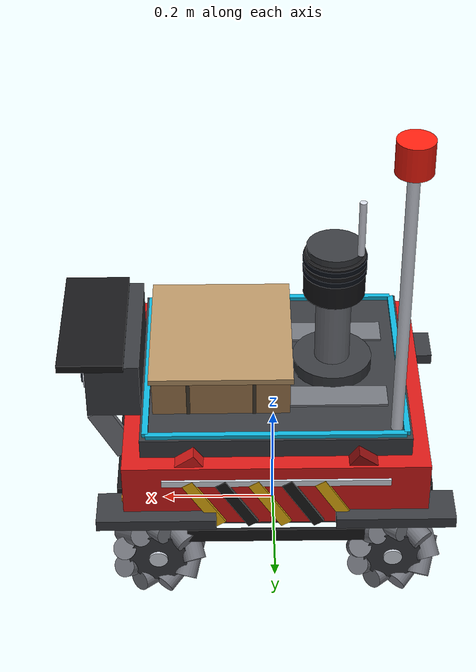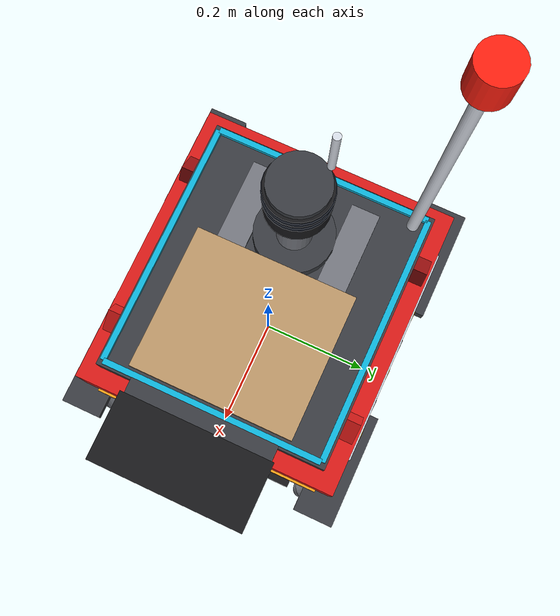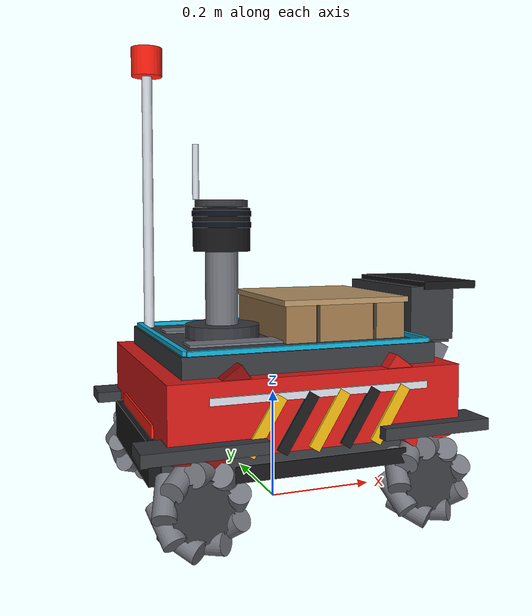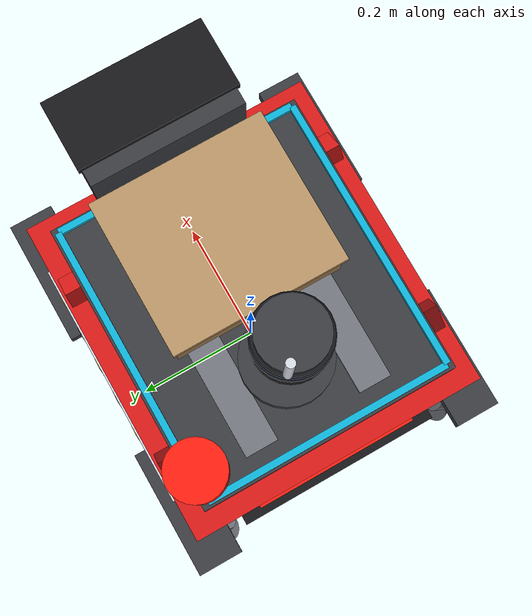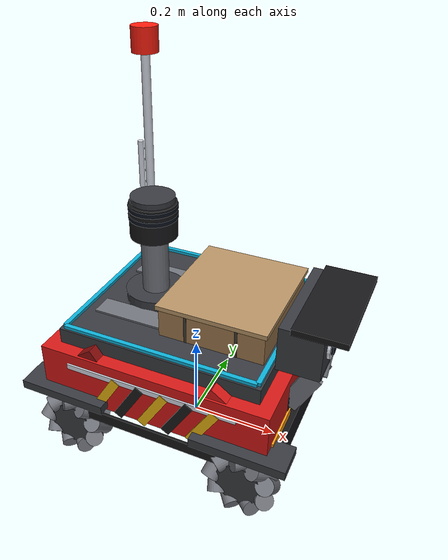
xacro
<?xml version="1.0" ?>
<robot name="depot_bot" xmlns:xacro="http://www.ros.org/wiki/xacro">

  <!-- 辊子布局是**算出来的**（9 辊、Rc+r=轮半径、轴线 45°、左右镜像），
       由 scripts/gen_rollers.py 生成；make robot 会先跑它。别手改 rollers.xacro。 -->
  <xacro:include filename="rollers.xacro"/>

  <xacro:arg name="wheel_friction" default="anisotropic"/>
  <xacro:arg name="enable_rgbd" default="true"/>
  <xacro:arg name="visual_detail" default="high"/>
  <xacro:property name="wheel_friction" value="$(arg wheel_friction)"/>
  <xacro:property name="visual_detail" value="$(arg visual_detail)"/>
  <xacro:arg name="sensors" default="nav"/>
  <xacro:property name="sensors" value="$(arg sensors)"/>
  <xacro:property name="is_nav" value="${sensors == 'nav'}"/>
  <xacro:property name="lidar_samples" value="${360 if is_nav else 1024}"/>
  <xacro:property name="lidar_beams" value="${16 if is_nav else 32}"/>
  <xacro:property name="lidar_rate" value="${5 if is_nav else 10}"/>
  <xacro:arg name="cam_always_on" default="false"/>
  <xacro:property name="cam_always_on" value="$(arg cam_always_on)"/>
  <!-- 相机分辨率/帧率做成参数：开渲染是 GPU 风险点，第一次开永远用 320x240@5Hz。
       always_on=false + 有人订阅才渲染 —— 所以"桥不建 = 零开销"，这比改档位更可靠。 -->
  <xacro:arg name="cam_width"  default="320"/>
  <xacro:arg name="cam_height" default="240"/>
  <xacro:arg name="cam_rate"   default="5"/>
  <xacro:property name="cam_width"  value="$(arg cam_width)"/>
  <xacro:property name="cam_height" value="$(arg cam_height)"/>
  <xacro:property name="cam_rate"   value="$(arg cam_rate)"/>

  <!-- ============================================================ 常量 -->
  <xacro:property name="wheel_radius" value="0.076"/>
  <xacro:property name="wheel_width"  value="0.050"/>
  <xacro:property name="track"        value="0.42"/>
  <xacro:property name="wheelbase"    value="0.40"/>
  <xacro:property name="body_x"       value="0.52"/>
  <xacro:property name="body_y"       value="0.46"/>
  <xacro:property name="body_z"       value="0.30"/>
  <xacro:property name="body_z0"      value="0.09"/>
  <xacro:property name="cam_z"        value="0.35"/>
  <xacro:arg name="cam_pitch" default="0"/>
  <xacro:property name="cam_pitch_val" value="$(arg cam_pitch)"/>
  <xacro:property name="cam_pitch_rad" value="${-float(cam_pitch_val)*3.14159265358979/180.0}"/>
  <xacro:property name="lidar_z"      value="0.55"/>
  <xacro:property name="mass_body"    value="10.0"/>
  <xacro:property name="mass_wheel"   value="0.5"/>
  <!-- base_link 原点在轮轴高度：所有"离地高度"都要减 zr -->
  <xacro:property name="zr" value="${wheel_radius}"/>

  <!-- ============================================================ 材质 -->
  <material name="amr_red">     <color rgba="0.84 0.10 0.09 1"/></material>
  <material name="amr_red_dk">  <color rgba="0.56 0.05 0.05 1"/></material>
  <material name="amr_grey">    <color rgba="0.22 0.23 0.25 1"/></material>
  <material name="amr_grey_lt"> <color rgba="0.45 0.46 0.49 1"/></material>
  <material name="amr_black">   <color rgba="0.09 0.09 0.10 1"/></material>
  <material name="amr_steel">   <color rgba="0.66 0.68 0.72 1"/></material>
  <material name="amr_chrome">  <color rgba="0.84 0.86 0.90 1"/></material>
  <material name="lamp_amber">  <color rgba="1.00 0.62 0.08 1"/></material>
  <material name="lamp_red">    <color rgba="1.00 0.12 0.06 1"/></material>
  <material name="lens_glass">  <color rgba="0.05 0.07 0.11 1"/></material>
  <material name="hazard_yellow"> <color rgba="0.93 0.72 0.06 1"/></material>
  <material name="hazard_dark">   <color rgba="0.10 0.10 0.10 1"/></material>
  <material name="led_cyan">      <color rgba="0.05 0.70 0.85 1"/></material>
  <material name="crate_card">    <color rgba="0.62 0.47 0.30 1"/></material>
  <material name="crate_light">   <color rgba="0.72 0.58 0.40 1"/></material>
  <material name="crate_strap">   <color rgba="0.25 0.22 0.18 1"/></material>

  <xacro:macro name="box_inertia" params="m x y z">
    <inertial>
      <mass value="${m}"/>
      <inertia ixx="${m*(y*y+z*z)/12}" ixy="0" ixz="0"
               iyy="${m*(x*x+z*z)/12}" iyz="0"
               izz="${m*(x*x+y*y)/12}"/>
    </inertial>
  </xacro:macro>

  <xacro:macro name="cyl_inertia" params="m r l">
    <inertial>
      <mass value="${m}"/>
      <inertia ixx="${m*(3*r*r+l*l)/12}" ixy="0" ixz="0"
               iyy="${m*(3*r*r+l*l)/12}" iyz="0"
               izz="${m*r*r/2}"/>
    </inertial>
  </xacro:macro>

  <xacro:macro name="box_vis" params="name xyz size mat rpy:='0 0 0'">
    <visual name="${name}">
      <origin xyz="${xyz}" rpy="${rpy}"/>
      <geometry><box size="${size}"/></geometry>
      <material name="${mat}"/>
    </visual>
  </xacro:macro>

  <xacro:macro name="cyl_vis" params="name xyz r l mat rpy:='0 0 0'">
    <visual name="${name}">
      <origin xyz="${xyz}" rpy="${rpy}"/>
      <geometry><cylinder radius="${r}" length="${l}"/></geometry>
      <material name="${mat}"/>
    </visual>
  </xacro:macro>

  <!-- ============================================================ 车体 -->
  <link name="base_footprint"/>

  <joint name="base_joint" type="fixed">
    <parent link="base_footprint"/>
    <child link="base_link"/>
    <origin xyz="0 0 ${wheel_radius}" rpy="0 0 0"/>
  </joint>

  <link name="base_link">
    <xacro:box_inertia m="${mass_body}" x="${body_x}" y="${body_y}" z="${body_z}"/>

    <!-- 唯一碰撞体：整车包围盒（细节只影响外观，不影响规划/物理） -->
    <collision name="chassis_collision">
      <origin xyz="0 0 ${body_z0 + body_z/2 - zr}" rpy="0 0 0"/>
      <geometry><box size="${body_x} ${body_y} ${body_z}"/></geometry>
    </collision>

    <!-- 底盘裙边（深灰，离地 0.09~0.15） -->
    <!-- 裙边收窄到 y±0.170：轮子视觉占 y 0.185~0.235，必须留出间隙（原来 0.22 直接插进轮子里） -->
    <xacro:box_vis name="skirt" xyz="0 0 ${0.120 - zr}" size="0.500 0.330 0.060" mat="amr_grey"/>

    <!-- 主车体（红色，0.15~0.27） -->
    <xacro:box_vis name="body_main" xyz="0 0 ${0.215 - zr}" size="0.510 0.460 0.120" mat="amr_red"/>
    <!-- 前后斜切面：车头/车尾不再是直角（这是"像真车"最关键的一步） -->
    <xacro:box_vis name="nose_slope" xyz="${0.161} 0 ${0.212 - zr}" size="0.140 0.450 0.110"
                   mat="amr_red" rpy="0 0.62 0"/>
    <xacro:box_vis name="tail_slope" xyz="${-0.161} 0 ${0.212 - zr}" size="0.140 0.450 0.110"
                   mat="amr_red_dk" rpy="0 -0.62 0"/>

    <!-- 上盖（深灰，0.27~0.31），比主车体窄一圈 -> 收腰轮廓 -->
    <xacro:box_vis name="deck" xyz="0 0 ${0.290 - zr}" size="0.450 0.400 0.040" mat="amr_grey"/>
    <xacro:box_vis name="deck_stripe_l" xyz="0 0.090 ${0.312 - zr}" size="0.380 0.050 0.004" mat="amr_grey_lt"/>
    <xacro:box_vis name="deck_stripe_r" xyz="0 -0.090 ${0.312 - zr}" size="0.380 0.050 0.004" mat="amr_grey_lt"/>

    <!-- 前后保险杠（黑色橡胶 + 加强筋） -->
    <xacro:box_vis name="bumper_front" xyz="${body_x/2 - 0.02} 0 ${0.135 - zr}" size="0.060 0.320 0.070" mat="amr_black"/>
    <xacro:box_vis name="bumper_rear"  xyz="${-body_x/2 + 0.02} 0 ${0.135 - zr}" size="0.060 0.320 0.070" mat="amr_black"/>

    <xacro:if value="${visual_detail == 'high'}">
      <!-- 圆角立柱：把方盒子的四个直角"磨圆"（放在车体转角内侧，r=0.03） -->
      <xacro:cyl_vis name="corner_fl" xyz="${0.225} ${0.200} ${0.210 - zr}" r="0.030" l="0.120" mat="amr_red"/>
      <xacro:cyl_vis name="corner_fr" xyz="${0.225} ${-0.200} ${0.210 - zr}" r="0.030" l="0.120" mat="amr_red"/>
      <xacro:cyl_vis name="corner_rl" xyz="${-0.225} ${0.200} ${0.210 - zr}" r="0.030" l="0.120" mat="amr_red_dk"/>
      <xacro:cyl_vis name="corner_rr" xyz="${-0.225} ${-0.200} ${0.210 - zr}" r="0.030" l="0.120" mat="amr_red_dk"/>

      <!-- 腰线：把车体视觉上分成上下两层 -->
      <xacro:box_vis name="waist_l" xyz="0 0.231 ${0.245 - zr}" size="0.380 0.006 0.012" mat="amr_chrome"/>
      <xacro:box_vis name="waist_r" xyz="0 -0.231 ${0.245 - zr}" size="0.380 0.006 0.012" mat="amr_chrome"/>

      <!-- 侧散热槽 -->
      <xacro:box_vis name="slot_l" xyz="0 0.232 ${0.128 - zr}" size="0.300 0.005 0.026" mat="amr_black"/>
      <xacro:box_vis name="slot_r" xyz="0 -0.232 ${0.128 - zr}" size="0.300 0.005 0.026" mat="amr_black"/>

      <!-- 头灯（琥珀）+ 尾灯条（红） -->
      <xacro:box_vis name="lamp_front_l" xyz="${0.252} 0.150 ${0.170 - zr}" size="0.014 0.110 0.038" mat="lamp_amber"/>
      <xacro:box_vis name="lamp_front_r" xyz="${0.252} -0.150 ${0.170 - zr}" size="0.014 0.110 0.038" mat="lamp_amber"/>
      <xacro:box_vis name="lamp_rear" xyz="${-0.252} 0 ${0.175 - zr}" size="0.014 0.260 0.032" mat="lamp_red"/>

      <!-- 轮罩（挡泥板），盖在四个轮子上方 -->
      <xacro:box_vis name="fender_fl" xyz="${wheelbase/2} ${track/2 + 0.010} ${0.172 - zr}" size="0.200 0.070 0.020" mat="amr_grey"/>
      <xacro:box_vis name="fender_fr" xyz="${wheelbase/2} ${-track/2 - 0.010} ${0.172 - zr}" size="0.200 0.070 0.020" mat="amr_grey"/>
      <xacro:box_vis name="fender_rl" xyz="${-wheelbase/2} ${track/2 + 0.010} ${0.172 - zr}" size="0.200 0.070 0.020" mat="amr_grey"/>
      <xacro:box_vis name="fender_rr" xyz="${-wheelbase/2} ${-track/2 - 0.010} ${0.172 - zr}" size="0.200 0.070 0.020" mat="amr_grey"/>

      <!-- ===== 前部双目云台罩：罩住两只镜头（镜头位置 = 实际 stereo link 位姿） -->
      <xacro:box_vis name="cam_hood" xyz="${body_x/2 + 0.010} 0 ${cam_z - zr}" size="0.090 0.240 0.100" mat="amr_grey"/>
      <xacro:box_vis name="cam_visor" xyz="${body_x/2 + 0.045} 0 ${cam_z - zr + 0.052}" size="0.110 0.250 0.014" mat="amr_black"/>
      <xacro:cyl_vis name="lens_ring_l" xyz="${body_x/2 + 0.052} 0.060 ${cam_z - zr}" r="0.030" l="0.018" mat="amr_chrome" rpy="0 1.5708 0"/>
      <xacro:cyl_vis name="lens_ring_r" xyz="${body_x/2 + 0.052} -0.060 ${cam_z - zr}" r="0.030" l="0.018" mat="amr_chrome" rpy="0 1.5708 0"/>
      <xacro:cyl_vis name="lens_l" xyz="${body_x/2 + 0.062} 0.060 ${cam_z - zr}" r="0.021" l="0.006" mat="lens_glass" rpy="0 1.5708 0"/>
      <xacro:cyl_vis name="lens_r" xyz="${body_x/2 + 0.062} -0.060 ${cam_z - zr}" r="0.021" l="0.006" mat="lens_glass" rpy="0 1.5708 0"/>
      <!-- 中间的补光/ToF 窗 -->
      <xacro:box_vis name="tof_window" xyz="${body_x/2 + 0.056} 0 ${cam_z - zr - 0.002}" size="0.012 0.050 0.028" mat="lens_glass"/>

      <!-- ===== 后部激光雷达塔（塔座 + 立柱 + 机身 + 两道扫掠窗 + 顶盖 + 天线） -->
      <xacro:cyl_vis name="tower_base" xyz="-0.100 0 ${0.318 - zr}" r="0.068" l="0.030" mat="amr_grey"/>
      <xacro:cyl_vis name="tower_post" xyz="-0.100 0 ${0.400 - zr}" r="0.030" l="0.140" mat="amr_grey_lt"/>
      <xacro:cyl_vis name="tower_body" xyz="-0.100 0 ${0.505 - zr}" r="0.052" l="0.078" mat="amr_black"/>
      <xacro:cyl_vis name="tower_win_a" xyz="-0.100 0 ${0.514 - zr}" r="0.0535" l="0.010" mat="lens_glass"/>
      <xacro:cyl_vis name="tower_win_b" xyz="-0.100 0 ${0.534 - zr}" r="0.0535" l="0.010" mat="lens_glass"/>
      <xacro:cyl_vis name="tower_cap" xyz="-0.100 0 ${0.552 - zr}" r="0.048" l="0.012" mat="amr_grey"/>
      <xacro:cyl_vis name="antenna" xyz="-0.140 0.030 ${0.610 - zr}" r="0.006" l="0.100" mat="amr_chrome"/>

      <!-- ===== 示位杆（67 m 厂房里一眼能找到车，纯 visual） -->
      <xacro:cyl_vis name="beacon_pole" xyz="${-0.200} ${0.170} ${0.560 - zr}" r="0.010" l="0.500" mat="amr_chrome"/>
      <xacro:cyl_vis name="beacon_lamp" xyz="${-0.200} ${0.170} ${0.830 - zr}" r="0.030" l="0.055" mat="lamp_red"/>

      <!-- ===== 相机支架：云台罩前伸 6 cm 是纯悬臂，补一组三角撑（底脚在车体前脸、顶脚在罩底） -->
      <!-- 两块斜板当"筋板"，加一块罩底横梁 + 一块前脸脚板 —— 侧视就是一个三角形 -->
      <xacro:box_vis name="cam_gusset_l" xyz="${0.2755} ${0.100} ${0.1715}" size="0.040 0.010 0.100"
                     mat="amr_grey_lt" rpy="0 0.485 0"/>
      <xacro:box_vis name="cam_gusset_r" xyz="${0.2755} ${-0.100} ${0.1715}" size="0.040 0.010 0.100"
                     mat="amr_grey_lt" rpy="0 0.485 0"/>
      <xacro:box_vis name="cam_rail"     xyz="${0.2725} 0 ${0.222}" size="0.085 0.215 0.010" mat="amr_grey"/>
      <xacro:box_vis name="cam_foot"     xyz="${0.2525} 0 ${0.124}" size="0.008 0.215 0.050" mat="amr_grey"/>

      <!-- ===== 侧面警示条纹（斜纹，黄黑相间；铁皮上的安全标识） -->
      <xacro:box_vis name="hazard_y0" xyz="${-0.100} ${0.2325} ${0.124}" size="0.020 0.005 0.105" mat="hazard_yellow" rpy="0 0.55 0"/>
      <xacro:box_vis name="hazard_k0" xyz="${-0.045} ${0.2325} ${0.124}" size="0.020 0.005 0.105" mat="hazard_dark"   rpy="0 0.55 0"/>
      <xacro:box_vis name="hazard_y1" xyz="${0.010} ${0.2325} ${0.124}" size="0.020 0.005 0.105" mat="hazard_yellow" rpy="0 0.55 0"/>
      <xacro:box_vis name="hazard_k1" xyz="${0.065} ${0.2325} ${0.124}" size="0.020 0.005 0.105" mat="hazard_dark"   rpy="0 0.55 0"/>
      <xacro:box_vis name="hazard_y2" xyz="${0.120} ${0.2325} ${0.124}" size="0.020 0.005 0.105" mat="hazard_yellow" rpy="0 0.55 0"/>
      <xacro:box_vis name="hazard_y3" xyz="${-0.100} ${-0.2325} ${0.124}" size="0.020 0.005 0.105" mat="hazard_yellow" rpy="0 0.55 0"/>
      <xacro:box_vis name="hazard_k2" xyz="${-0.045} ${-0.2325} ${0.124}" size="0.020 0.005 0.105" mat="hazard_dark"   rpy="0 0.55 0"/>
      <xacro:box_vis name="hazard_y4" xyz="${0.010} ${-0.2325} ${0.124}" size="0.020 0.005 0.105" mat="hazard_yellow" rpy="0 0.55 0"/>
      <xacro:box_vis name="hazard_k3" xyz="${0.065} ${-0.2325} ${0.124}" size="0.020 0.005 0.105" mat="hazard_dark"   rpy="0 0.55 0"/>
      <xacro:box_vis name="hazard_y5" xyz="${0.120} ${-0.2325} ${0.124}" size="0.020 0.005 0.105" mat="hazard_yellow" rpy="0 0.55 0"/>

      <!-- ===== 顶部 LED 状态灯带（上盖四边一圈，青色=自主模式） -->
      <xacro:box_vis name="led_strip_front" xyz="${0.216} 0 ${0.2375}" size="0.010 0.380 0.008" mat="led_cyan"/>
      <xacro:box_vis name="led_strip_rear"  xyz="${-0.216} 0 ${0.2375}" size="0.010 0.380 0.008" mat="led_cyan"/>
      <xacro:box_vis name="led_strip_left"  xyz="0 ${0.191} ${0.2375}" size="0.430 0.010 0.008" mat="led_cyan"/>
      <xacro:box_vis name="led_strip_right" xyz="0 ${-0.191} ${0.2375}" size="0.430 0.010 0.008" mat="led_cyan"/>

      <!-- ===== 载荷箱（上盖前部，纯 visual；顶面 0.49 m 低于激光 0.55 m，不挡扫描） -->
      <!-- 载荷箱顶 0.385 < 激光 −25° 环在箱体远端(0.305 m)的 0.408 → 不挡扫描 -->
      <xacro:box_vis name="crate_body"  xyz="${0.090} 0 ${0.3425 - zr}" size="0.230 0.260 0.065" mat="crate_card"/>
      <xacro:box_vis name="crate_lid"   xyz="${0.090} 0 ${0.380 - zr}" size="0.240 0.270 0.010" mat="crate_light"/>
      <xacro:box_vis name="crate_strap_1" xyz="${0.035} 0 ${0.3425 - zr}" size="0.006 0.262 0.065" mat="crate_strap"/>
      <xacro:box_vis name="crate_strap_2" xyz="${0.145} 0 ${0.3425 - zr}" size="0.006 0.262 0.065" mat="crate_strap"/>
    </xacro:if>
  </link>

  <!-- ============================================================ 传感器 -->
  <!-- 双目：两台 camera 手动摆基线 0.12 m（Fortress 没有 stereo_camera 类型） -->
  <link name="stereo_left_link"/>
  <joint name="stereo_left_joint" type="fixed">
    <parent link="base_link"/>
    <child link="stereo_left_link"/>
    <origin xyz="${body_x/2} ${0.06} ${cam_z - zr}" rpy="0 ${cam_pitch_rad} 0"/>
  </joint>
  <gazebo reference="stereo_left_link">
    <sensor type="camera" name="stereo_left">
      <update_rate>${cam_rate}</update_rate>
      <always_on>${cam_always_on}</always_on>
      <visualize>false</visualize>
      <topic>stereo_left</topic>
      <camera>
        <horizontal_fov>1.5708</horizontal_fov>
        <image><width>${cam_width}</width><height>${cam_height}</height><format>R8G8B8</format></image>
        <clip><near>0.10</near><far>25.0</far></clip>
        <noise><type>gaussian</type><mean>0.0</mean><stddev>0.004</stddev></noise>
      </camera>
    </sensor>
  </gazebo>

  <link name="stereo_right_link"/>
  <joint name="stereo_right_joint" type="fixed">
    <parent link="base_link"/>
    <child link="stereo_right_link"/>
    <origin xyz="${body_x/2} ${-0.06} ${cam_z - zr}" rpy="0 ${cam_pitch_rad} 0"/>
  </joint>
  <gazebo reference="stereo_right_link">
    <sensor type="camera" name="stereo_right">
      <update_rate>${cam_rate}</update_rate>
      <always_on>${cam_always_on}</always_on>
      <visualize>false</visualize>
      <topic>stereo_right</topic>
      <camera>
        <horizontal_fov>1.5708</horizontal_fov>
        <image><width>${cam_width}</width><height>${cam_height}</height><format>R8G8B8</format></image>
        <clip><near>0.10</near><far>25.0</far></clip>
        <noise><type>gaussian</type><mean>0.0</mean><stddev>0.004</stddev></noise>
      </camera>
    </sensor>
  </gazebo>

  <!-- RGB-D：只当"深度标尺"给双目打分，不参与 SLAM（SPEC §5） -->
  <xacro:if value="$(arg enable_rgbd)">
    <link name="rgbd_link"/>
    <joint name="rgbd_joint" type="fixed">
      <parent link="base_link"/>
      <child link="rgbd_link"/>
      <origin xyz="${body_x/2 + 0.005} 0 ${cam_z - zr + 0.01}" rpy="0 ${cam_pitch_rad} 0"/>
    </joint>
    <gazebo reference="rgbd_link">
      <sensor type="rgbd_camera" name="rgbd">
      <update_rate>${cam_rate}</update_rate>
      <always_on>${cam_always_on}</always_on>
        <visualize>false</visualize>
        <topic>rgbd</topic>
        <camera>
          <horizontal_fov>1.5708</horizontal_fov>
          <image><width>${cam_width}</width><height>${cam_height}</height><format>R8G8B8</format></image>
          <clip><near>0.10</near><far>25.0</far></clip>
        </camera>
      </sensor>
    </gazebo>
  </xacro:if>

  <!-- 3D 激光：32 线，竖直 −25°…+15°，装在雷达塔顶（塔体是 visual，传感器位置严格在 0.55 m） -->
  <link name="lidar3d_link"/>
  <joint name="lidar3d_joint" type="fixed">
    <parent link="base_link"/>
    <child link="lidar3d_link"/>
    <origin xyz="-0.100 0 ${lidar_z - zr}" rpy="0 0 0"/>
  </joint>
  <gazebo reference="lidar3d_link">
    <sensor type="gpu_lidar" name="lidar3d">
      <update_rate>${lidar_rate}</update_rate>
      <always_on>true</always_on>
      <visualize>false</visualize>
      <topic>lidar3d</topic>
      <lidar>
        <scan>
          <horizontal>
            <samples>${lidar_samples}</samples>
            <resolution>1</resolution>
            <min_angle>-3.14159</min_angle>
            <max_angle>3.14159</max_angle>
          </horizontal>
          <vertical>
            <samples>${lidar_beams}</samples>
            <resolution>1</resolution>
            <min_angle>-0.43633</min_angle>
            <max_angle>0.26180</max_angle>
          </vertical>
        </scan>
        <range>
          <min>0.30</min>
          <max>25.0</max>
          <resolution>0.01</resolution>
        </range>
        <noise><type>gaussian</type><mean>0.0</mean><stddev>0.01</stddev></noise>
      </lidar>
    </sensor>
  </gazebo>

  <!-- IMU：200 Hz，含噪声 + 零偏随机游走 -->
  <link name="imu_link"/>
  <joint name="imu_joint" type="fixed">
    <parent link="base_link"/>
    <child link="imu_link"/>
    <origin xyz="0 0 ${0.210 - zr}" rpy="0 0 0"/>
  </joint>
  <gazebo reference="imu_link">
    <sensor type="imu" name="imu">
      <update_rate>200</update_rate>
      <always_on>true</always_on>
      <topic>imu</topic>
      <imu>
        <angular_velocity>
          <x><noise type="gaussian"><mean>0</mean><stddev>0.0009</stddev>
              <dynamic_bias_stddev>0.00004</dynamic_bias_stddev>
              <dynamic_bias_correlation_time>200</dynamic_bias_correlation_time></noise></x>
          <y><noise type="gaussian"><mean>0</mean><stddev>0.0009</stddev>
              <dynamic_bias_stddev>0.00004</dynamic_bias_stddev>
              <dynamic_bias_correlation_time>200</dynamic_bias_correlation_time></noise></y>
          <z><noise type="gaussian"><mean>0</mean><stddev>0.0009</stddev>
              <dynamic_bias_stddev>0.00004</dynamic_bias_stddev>
              <dynamic_bias_correlation_time>200</dynamic_bias_correlation_time></noise></z>
        </angular_velocity>
        <linear_acceleration>
          <x><noise type="gaussian"><mean>0</mean><stddev>0.012</stddev></noise></x>
          <y><noise type="gaussian"><mean>0</mean><stddev>0.012</stddev></noise></y>
          <z><noise type="gaussian"><mean>0</mean><stddev>0.012</stddev></noise></z>
        </linear_acceleration>
      </imu>
    </sensor>
  </gazebo>

  <!-- ============================================================ 麦克纳姆轮 -->
  <!-- 每个轮子 = 胎面圆柱 + 两侧轮毂 + 轮毂盖 + 9 个 45° 辊子（真实结构）。
       辊子只是 visual：碰撞体仍是整圆，否则 40 个微小接触点会把物理拖垮并让速度跟踪失真。 -->
  <xacro:macro name="mecanum_wheel" params="prefix x y hand">
    <link name="wheel_${prefix}_link">
      <xacro:cyl_inertia m="${mass_wheel}" r="${wheel_radius}" l="${wheel_width}"/>
      <collision name="tire_collision">
        <origin xyz="0 0 0" rpy="1.5708 0 0"/>
        <geometry><cylinder radius="${wheel_radius}" length="${wheel_width}"/></geometry>
      </collision>

      <!-- 真麦克纳姆轮**没有轮胎筒**：滚动面就是那 9 根辊子。这里只放两侧轮缘盘 + 轮毂，
           辊子由 rollers.xacro（scripts/gen_rollers.py 生成）按左右手性镜像插入。
           碰撞体仍是整圆 cylinder（物理口径不动，见文件头与 §4.2）。 -->
      <xacro:cyl_vis name="rim_o"    xyz="0 ${wheel_width/2 - 0.0025} 0"  r="0.050" l="0.005" mat="amr_grey"   rpy="1.5708 0 0"/>
      <xacro:cyl_vis name="rim_i"    xyz="0 ${-wheel_width/2 + 0.0025} 0" r="0.050" l="0.005" mat="amr_grey"   rpy="1.5708 0 0"/>
      <xacro:cyl_vis name="hub_core" xyz="0 0 0"                          r="0.032" l="${wheel_width - 0.010}" mat="amr_steel" rpy="1.5708 0 0"/>
      <xacro:cyl_vis name="hub_cap"  xyz="0 ${wheel_width/2 + 0.001} 0"   r="0.016" l="0.006" mat="amr_chrome" rpy="1.5708 0 0"/>

      <!-- 辊子：包络外沿 = 轮半径，轴线与轮轴成 45°，左侧(+y)与右侧(-y)镜像 -->
      <xacro:if value="${visual_detail == 'high'}">
        <xacro:if value="${hand == 'l'}">
          <xacro:mecanum_rollers_l/>
        </xacro:if>
        <xacro:unless value="${hand == 'l'}">
          <xacro:mecanum_rollers_r/>
        </xacro:unless>
      </xacro:if>
    </link>

    <joint name="wheel_${prefix}_joint" type="continuous">
      <parent link="base_link"/>
      <child link="wheel_${prefix}_link"/>
      <origin xyz="${x} ${y} 0" rpy="0 0 0"/>
      <axis xyz="0 1 0"/>
      <limit effort="50" velocity="30"/>
      <dynamics damping="0.05" friction="0.02"/>
    </joint>

    <!-- 摩擦：isotropic 是"默认各向同性"；anisotropic 让横向摩擦大于滚动方向，
         近似辊子 45° 的方向性（SPEC §4.2 补救① 的第一版） -->
    <gazebo reference="wheel_${prefix}_link">
      <mu1>0.85</mu1>
      <xacro:if value="${wheel_friction == 'anisotropic'}">
        <mu2>1.70</mu2>
      </xacro:if>
      <xacro:unless value="${wheel_friction == 'anisotropic'}">
        <mu2>0.85</mu2>
      </xacro:unless>
      <kp>1000000.0</kp>
      <kd>1.0</kd>
      <minDepth>0.001</minDepth>
      <maxVel>0.0</maxVel>
    </gazebo>
  </xacro:macro>

  <!-- 前进方向 +X：FL(+x,+y) FR(+x,-y) RL(-x,+y) RR(-x,-y) -->
  <xacro:mecanum_wheel prefix="fl" x="${ wheelbase/2}" y="${ track/2}" hand="l"/>
  <xacro:mecanum_wheel prefix="fr" x="${ wheelbase/2}" y="${-track/2}" hand="r"/>
  <xacro:mecanum_wheel prefix="rl" x="${-wheelbase/2}" y="${ track/2}" hand="l"/>
  <xacro:mecanum_wheel prefix="rr" x="${-wheelbase/2}" y="${-track/2}" hand="r"/>

  <!-- ============================================================ 驱动 -->
  <gazebo>
    <plugin filename="ignition-gazebo-mecanum-drive-system"
            name="ignition::gazebo::systems::MecanumDrive">
      <front_left_joint>wheel_fl_joint</front_left_joint>
      <back_left_joint>wheel_rl_joint</back_left_joint>
      <front_right_joint>wheel_fr_joint</front_right_joint>
      <back_right_joint>wheel_rr_joint</back_right_joint>
      <wheel_radius>${wheel_radius}</wheel_radius>
      <wheel_separation>${track}</wheel_separation>
      <wheelbase>${wheelbase}</wheelbase>
      <odom_publish_frequency>50</odom_publish_frequency>
      <odom_topic>/model/depot_bot/odom</odom_topic>
    </plugin>
    <plugin filename="ignition-gazebo-joint-state-publisher-system"
            name="ignition::gazebo::systems::JointStatePublisher">
      <topic>joint_states</topic>
    </plugin>
  </gazebo>

</robot>

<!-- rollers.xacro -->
<!-- 由 scripts/gen_rollers.py 生成，勿手改（make robot 会重新生成）。
     几何约束见该脚本文件头：辊子包络 = 轮半径、轴线 45°、左右镜像。 -->
<robot xmlns:xacro="http://www.ros.org/wiki/xacro">

  <xacro:macro name="mecanum_rollers_l">
    <visual name="roller_l0"><origin xyz="0.05663 0 0" rpy="0.78540 0 3.14159"/><geometry><cylinder radius="0.01937" length="0.07071"/></geometry><material name="amr_grey_lt"/></visual>
    <visual name="roller_l1"><origin xyz="0.04338 0 0.03640" rpy="0.78540 0.69813 3.14159"/><geometry><cylinder radius="0.01937" length="0.07071"/></geometry><material name="amr_grey_lt"/></visual>
    <visual name="roller_l2"><origin xyz="0.00983 0 0.05577" rpy="0.78540 1.39626 3.14159"/><geometry><cylinder radius="0.01937" length="0.07071"/></geometry><material name="amr_grey_lt"/></visual>
    <visual name="roller_l3"><origin xyz="-0.02832 0 0.04904" rpy="-2.35619 1.04720 0"/><geometry><cylinder radius="0.01937" length="0.07071"/></geometry><material name="amr_grey_lt"/></visual>
    <visual name="roller_l4"><origin xyz="-0.05322 0 0.01937" rpy="-2.35619 0.34907 0"/><geometry><cylinder radius="0.01937" length="0.07071"/></geometry><material name="amr_grey_lt"/></visual>
    <visual name="roller_l5"><origin xyz="-0.05322 0 -0.01937" rpy="-2.35619 -0.34907 0"/><geometry><cylinder radius="0.01937" length="0.07071"/></geometry><material name="amr_grey_lt"/></visual>
    <visual name="roller_l6"><origin xyz="-0.02832 0 -0.04904" rpy="-2.35619 -1.04720 0"/><geometry><cylinder radius="0.01937" length="0.07071"/></geometry><material name="amr_grey_lt"/></visual>
    <visual name="roller_l7"><origin xyz="0.00983 0 -0.05577" rpy="0.78540 -1.39626 3.14159"/><geometry><cylinder radius="0.01937" length="0.07071"/></geometry><material name="amr_grey_lt"/></visual>
    <visual name="roller_l8"><origin xyz="0.04338 0 -0.03640" rpy="0.78540 -0.69813 3.14159"/><geometry><cylinder radius="0.01937" length="0.07071"/></geometry><material name="amr_grey_lt"/></visual>
  </xacro:macro>

  <xacro:macro name="mecanum_rollers_r">
    <visual name="roller_r0"><origin xyz="0.05663 0 0" rpy="-2.35619 0 0"/><geometry><cylinder radius="0.01937" length="0.07071"/></geometry><material name="amr_grey_lt"/></visual>
    <visual name="roller_r1"><origin xyz="0.04338 0 0.03640" rpy="-2.35619 -0.69813 0"/><geometry><cylinder radius="0.01937" length="0.07071"/></geometry><material name="amr_grey_lt"/></visual>
    <visual name="roller_r2"><origin xyz="0.00983 0 0.05577" rpy="-2.35619 -1.39626 0"/><geometry><cylinder radius="0.01937" length="0.07071"/></geometry><material name="amr_grey_lt"/></visual>
    <visual name="roller_r3"><origin xyz="-0.02832 0 0.04904" rpy="0.78540 -1.04720 3.14159"/><geometry><cylinder radius="0.01937" length="0.07071"/></geometry><material name="amr_grey_lt"/></visual>
    <visual name="roller_r4"><origin xyz="-0.05322 0 0.01937" rpy="0.78540 -0.34907 3.14159"/><geometry><cylinder radius="0.01937" length="0.07071"/></geometry><material name="amr_grey_lt"/></visual>
    <visual name="roller_r5"><origin xyz="-0.05322 0 -0.01937" rpy="0.78540 0.34907 3.14159"/><geometry><cylinder radius="0.01937" length="0.07071"/></geometry><material name="amr_grey_lt"/></visual>
    <visual name="roller_r6"><origin xyz="-0.02832 0 -0.04904" rpy="0.78540 1.04720 3.14159"/><geometry><cylinder radius="0.01937" length="0.07071"/></geometry><material name="amr_grey_lt"/></visual>
    <visual name="roller_r7"><origin xyz="0.00983 0 -0.05577" rpy="-2.35619 1.39626 0"/><geometry><cylinder radius="0.01937" length="0.07071"/></geometry><material name="amr_grey_lt"/></visual>
    <visual name="roller_r8"><origin xyz="0.04338 0 -0.03640" rpy="-2.35619 0.69813 0"/><geometry><cylinder radius="0.01937" length="0.07071"/></geometry><material name="amr_grey_lt"/></visual>
  </xacro:macro>

</robot>
